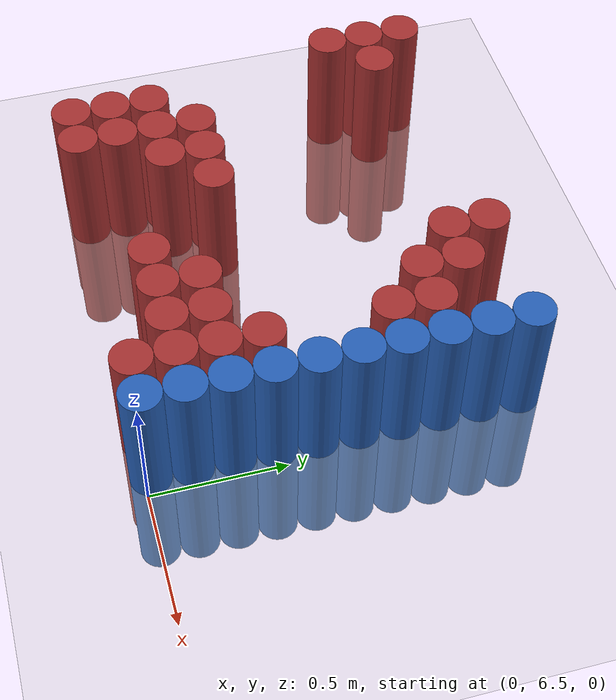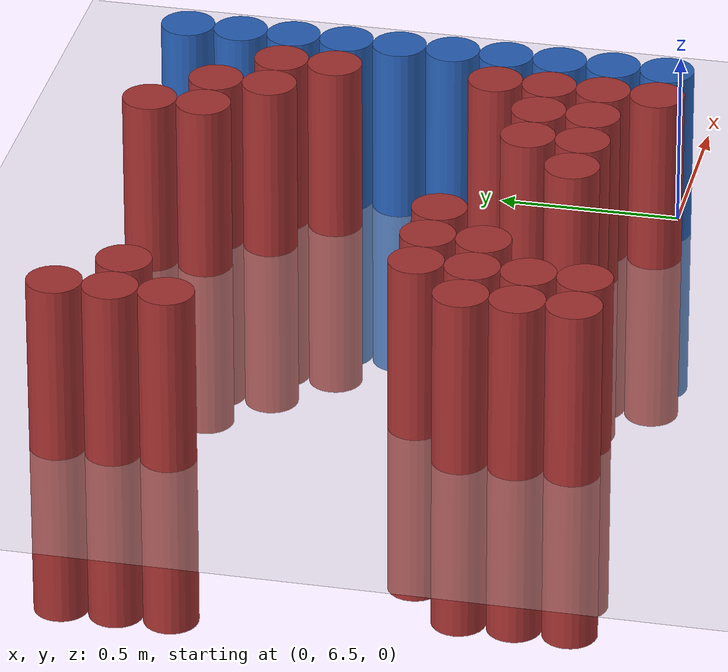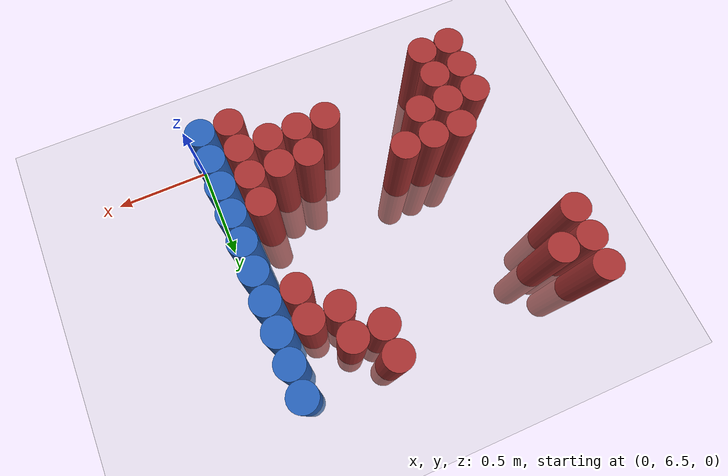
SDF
<sdf version="1.6">
 <world name="default">
  <model name="ground_plane">
   <static>1</static>
   <link name="link">
    <collision name="collision">
     <geometry><plane><normal>0 0 1</normal><size>100 100</size></plane></geometry>
     <surface><friction><ode><mu>100</mu><mu2>50</mu2></ode></friction></surface>
    </collision>
    <visual name="visual">
     <cast_shadows>0</cast_shadows>
     <geometry><plane><normal>0 0 1</normal><size>100 100</size></plane></geometry>
     <material>
      <script><uri>file://media/materials/scripts/gazebo.material</uri><name>Gazebo/Grey</name></script>
     </material>
    </visual>
   </link>
  </model>
  <model name="unit_cylinder_210">
   <static>1</static>
   <pose>-1.575000 7.575000 0.000000 0.000000 0.000000 0.000000</pose>
   <link name="link">
    <inertial>
     <mass>1</mass>
     <inertia><ixx>0.145833</ixx><ixy>0</ixy><ixz>0</ixz><iyy>0.145833</iyy><iyz>0</iyz><izz>0.125</izz></inertia>
    </inertial>
    <collision name="collision">
     <geometry><cylinder><radius>0.075000</radius><length>1</length></cylinder></geometry>
    </collision>
    <visual name="visual">
     <geometry><cylinder><radius>0.075000</radius><length>1</length></cylinder></geometry>
     <material>
      <ambient>0.648000 0.192000 0.192000 1</ambient>
      <diffuse>0.648000 0.192000 0.192000 1</diffuse>
     </material>
     <material>
      <script><name>Gazebo/Grey</name><uri>file://media/materials/scripts/gazebo.material</uri></script>
     </material>
    </visual>
    <sensor name="sensor_contact" type="contact"><contact><collision>collision</collision></contact></sensor>
   </link>
   <plugin filename="gz-sim-touchplugin-system" name="gz::sim::systems::TouchPlugin">
    <target>robot</target>
    <namespace>robot</namespace>
    <time>0.001</time>
    <enabled>true</enabled>
   </plugin>
  </model>
  <model name="unit_cylinder_211">
   <static>1</static>
   <pose>-1.575000 7.725000 0.000000 0.000000 0.000000 0.000000</pose>
   <link name="link">
    <inertial>
     <mass>1</mass>
     <inertia><ixx>0.145833</ixx><ixy>0</ixy><ixz>0</ixz><iyy>0.145833</iyy><iyz>0</iyz><izz>0.125</izz></inertia>
    </inertial>
    <collision name="collision">
     <geometry><cylinder><radius>0.075000</radius><length>1</length></cylinder></geometry>
    </collision>
    <visual name="visual">
     <geometry><cylinder><radius>0.075000</radius><length>1</length></cylinder></geometry>
     <material>
      <ambient>0.648000 0.192000 0.192000 1</ambient>
      <diffuse>0.648000 0.192000 0.192000 1</diffuse>
     </material>
     <material>
      <script><name>Gazebo/Grey</name><uri>file://media/materials/scripts/gazebo.material</uri></script>
     </material>
    </visual>
    <sensor name="sensor_contact" type="contact"><contact><collision>collision</collision></contact></sensor>
   </link>
   <plugin filename="gz-sim-touchplugin-system" name="gz::sim::systems::TouchPlugin">
    <target>robot</target>
    <namespace>robot</namespace>
    <time>0.001</time>
    <enabled>true</enabled>
   </plugin>
  </model>
  <model name="unit_cylinder_212">
   <static>1</static>
   <pose>-1.575000 7.875000 0.000000 0.000000 0.000000 0.000000</pose>
   <link name="link">
    <inertial>
     <mass>1</mass>
     <inertia><ixx>0.145833</ixx><ixy>0</ixy><ixz>0</ixz><iyy>0.145833</iyy><iyz>0</iyz><izz>0.125</izz></inertia>
    </inertial>
    <collision name="collision">
     <geometry><cylinder><radius>0.075000</radius><length>1</length></cylinder></geometry>
    </collision>
    <visual name="visual">
     <geometry><cylinder><radius>0.075000</radius><length>1</length></cylinder></geometry>
     <material>
      <ambient>0.648000 0.192000 0.192000 1</ambient>
      <diffuse>0.648000 0.192000 0.192000 1</diffuse>
     </material>
     <material>
      <script><name>Gazebo/Grey</name><uri>file://media/materials/scripts/gazebo.material</uri></script>
     </material>
    </visual>
    <sensor name="sensor_contact" type="contact"><contact><collision>collision</collision></contact></sensor>
   </link>
   <plugin filename="gz-sim-touchplugin-system" name="gz::sim::systems::TouchPlugin">
    <target>robot</target>
    <namespace>robot</namespace>
    <time>0.001</time>
    <enabled>true</enabled>
   </plugin>
  </model>
  <model name="unit_cylinder_216">
   <static>1</static>
   <pose>-1.425000 6.525000 0.000000 0.000000 0.000000 0.000000</pose>
   <link name="link">
    <inertial>
     <mass>1</mass>
     <inertia><ixx>0.145833</ixx><ixy>0</ixy><ixz>0</ixz><iyy>0.145833</iyy><iyz>0</iyz><izz>0.125</izz></inertia>
    </inertial>
    <collision name="collision">
     <geometry><cylinder><radius>0.075000</radius><length>1</length></cylinder></geometry>
    </collision>
    <visual name="visual">
     <geometry><cylinder><radius>0.075000</radius><length>1</length></cylinder></geometry>
     <material>
      <ambient>0.648000 0.192000 0.192000 1</ambient>
      <diffuse>0.648000 0.192000 0.192000 1</diffuse>
     </material>
     <material>
      <script><name>Gazebo/Grey</name><uri>file://media/materials/scripts/gazebo.material</uri></script>
     </material>
    </visual>
    <sensor name="sensor_contact" type="contact"><contact><collision>collision</collision></contact></sensor>
   </link>
   <plugin filename="gz-sim-touchplugin-system" name="gz::sim::systems::TouchPlugin">
    <target>robot</target>
    <namespace>robot</namespace>
    <time>0.001</time>
    <enabled>true</enabled>
   </plugin>
  </model>
  <model name="unit_cylinder_217">
   <static>1</static>
   <pose>-1.425000 6.675000 0.000000 0.000000 0.000000 0.000000</pose>
   <link name="link">
    <inertial>
     <mass>1</mass>
     <inertia><ixx>0.145833</ixx><ixy>0</ixy><ixz>0</ixz><iyy>0.145833</iyy><iyz>0</iyz><izz>0.125</izz></inertia>
    </inertial>
    <collision name="collision">
     <geometry><cylinder><radius>0.075000</radius><length>1</length></cylinder></geometry>
    </collision>
    <visual name="visual">
     <geometry><cylinder><radius>0.075000</radius><length>1</length></cylinder></geometry>
     <material>
      <ambient>0.648000 0.192000 0.192000 1</ambient>
      <diffuse>0.648000 0.192000 0.192000 1</diffuse>
     </material>
     <material>
      <script><name>Gazebo/Grey</name><uri>file://media/materials/scripts/gazebo.material</uri></script>
     </material>
    </visual>
    <sensor name="sensor_contact" type="contact"><contact><collision>collision</collision></contact></sensor>
   </link>
   <plugin filename="gz-sim-touchplugin-system" name="gz::sim::systems::TouchPlugin">
    <target>robot</target>
    <namespace>robot</namespace>
    <time>0.001</time>
    <enabled>true</enabled>
   </plugin>
  </model>
  <model name="unit_cylinder_218">
   <static>1</static>
   <pose>-1.425000 6.825000 0.000000 0.000000 0.000000 0.000000</pose>
   <link name="link">
    <inertial>
     <mass>1</mass>
     <inertia><ixx>0.145833</ixx><ixy>0</ixy><ixz>0</ixz><iyy>0.145833</iyy><iyz>0</iyz><izz>0.125</izz></inertia>
    </inertial>
    <collision name="collision">
     <geometry><cylinder><radius>0.075000</radius><length>1</length></cylinder></geometry>
    </collision>
    <visual name="visual">
     <geometry><cylinder><radius>0.075000</radius><length>1</length></cylinder></geometry>
     <material>
      <ambient>0.648000 0.192000 0.192000 1</ambient>
      <diffuse>0.648000 0.192000 0.192000 1</diffuse>
     </material>
     <material>
      <script><name>Gazebo/Grey</name><uri>file://media/materials/scripts/gazebo.material</uri></script>
     </material>
    </visual>
    <sensor name="sensor_contact" type="contact"><contact><collision>collision</collision></contact></sensor>
   </link>
   <plugin filename="gz-sim-touchplugin-system" name="gz::sim::systems::TouchPlugin">
    <target>robot</target>
    <namespace>robot</namespace>
    <time>0.001</time>
    <enabled>true</enabled>
   </plugin>
  </model>
  <model name="unit_cylinder_219">
   <static>1</static>
   <pose>-1.425000 7.725000 0.000000 0.000000 0.000000 0.000000</pose>
   <link name="link">
    <inertial>
     <mass>1</mass>
     <inertia><ixx>0.145833</ixx><ixy>0</ixy><ixz>0</ixz><iyy>0.145833</iyy><iyz>0</iyz><izz>0.125</izz></inertia>
    </inertial>
    <collision name="collision">
     <geometry><cylinder><radius>0.075000</radius><length>1</length></cylinder></geometry>
    </collision>
    <visual name="visual">
     <geometry><cylinder><radius>0.075000</radius><length>1</length></cylinder></geometry>
     <material>
      <ambient>0.648000 0.192000 0.192000 1</ambient>
      <diffuse>0.648000 0.192000 0.192000 1</diffuse>
     </material>
     <material>
      <script><name>Gazebo/Grey</name><uri>file://media/materials/scripts/gazebo.material</uri></script>
     </material>
    </visual>
    <sensor name="sensor_contact" type="contact"><contact><collision>collision</collision></contact></sensor>
   </link>
   <plugin filename="gz-sim-touchplugin-system" name="gz::sim::systems::TouchPlugin">
    <target>robot</target>
    <namespace>robot</namespace>
    <time>0.001</time>
    <enabled>true</enabled>
   </plugin>
  </model>
  <model name="unit_cylinder_222">
   <static>1</static>
   <pose>-1.275000 6.525000 0.000000 0.000000 0.000000 0.000000</pose>
   <link name="link">
    <inertial>
     <mass>1</mass>
     <inertia><ixx>0.145833</ixx><ixy>0</ixy><ixz>0</ixz><iyy>0.145833</iyy><iyz>0</iyz><izz>0.125</izz></inertia>
    </inertial>
    <collision name="collision">
     <geometry><cylinder><radius>0.075000</radius><length>1</length></cylinder></geometry>
    </collision>
    <visual name="visual">
     <geometry><cylinder><radius>0.075000</radius><length>1</length></cylinder></geometry>
     <material>
      <ambient>0.648000 0.192000 0.192000 1</ambient>
      <diffuse>0.648000 0.192000 0.192000 1</diffuse>
     </material>
     <material>
      <script><name>Gazebo/Grey</name><uri>file://media/materials/scripts/gazebo.material</uri></script>
     </material>
    </visual>
    <sensor name="sensor_contact" type="contact"><contact><collision>collision</collision></contact></sensor>
   </link>
   <plugin filename="gz-sim-touchplugin-system" name="gz::sim::systems::TouchPlugin">
    <target>robot</target>
    <namespace>robot</namespace>
    <time>0.001</time>
    <enabled>true</enabled>
   </plugin>
  </model>
  <model name="unit_cylinder_223">
   <static>1</static>
   <pose>-1.275000 6.675000 0.000000 0.000000 0.000000 0.000000</pose>
   <link name="link">
    <inertial>
     <mass>1</mass>
     <inertia><ixx>0.145833</ixx><ixy>0</ixy><ixz>0</ixz><iyy>0.145833</iyy><iyz>0</iyz><izz>0.125</izz></inertia>
    </inertial>
    <collision name="collision">
     <geometry><cylinder><radius>0.075000</radius><length>1</length></cylinder></geometry>
    </collision>
    <visual name="visual">
     <geometry><cylinder><radius>0.075000</radius><length>1</length></cylinder></geometry>
     <material>
      <ambient>0.648000 0.192000 0.192000 1</ambient>
      <diffuse>0.648000 0.192000 0.192000 1</diffuse>
     </material>
     <material>
      <script><name>Gazebo/Grey</name><uri>file://media/materials/scripts/gazebo.material</uri></script>
     </material>
    </visual>
    <sensor name="sensor_contact" type="contact"><contact><collision>collision</collision></contact></sensor>
   </link>
   <plugin filename="gz-sim-touchplugin-system" name="gz::sim::systems::TouchPlugin">
    <target>robot</target>
    <namespace>robot</namespace>
    <time>0.001</time>
    <enabled>true</enabled>
   </plugin>
  </model>
  <model name="unit_cylinder_224">
   <static>1</static>
   <pose>-1.275000 6.825000 0.000000 0.000000 0.000000 0.000000</pose>
   <link name="link">
    <inertial>
     <mass>1</mass>
     <inertia><ixx>0.145833</ixx><ixy>0</ixy><ixz>0</ixz><iyy>0.145833</iyy><iyz>0</iyz><izz>0.125</izz></inertia>
    </inertial>
    <collision name="collision">
     <geometry><cylinder><radius>0.075000</radius><length>1</length></cylinder></geometry>
    </collision>
    <visual name="visual">
     <geometry><cylinder><radius>0.075000</radius><length>1</length></cylinder></geometry>
     <material>
      <ambient>0.648000 0.192000 0.192000 1</ambient>
      <diffuse>0.648000 0.192000 0.192000 1</diffuse>
     </material>
     <material>
      <script><name>Gazebo/Grey</name><uri>file://media/materials/scripts/gazebo.material</uri></script>
     </material>
    </visual>
    <sensor name="sensor_contact" type="contact"><contact><collision>collision</collision></contact></sensor>
   </link>
   <plugin filename="gz-sim-touchplugin-system" name="gz::sim::systems::TouchPlugin">
    <target>robot</target>
    <namespace>robot</namespace>
    <time>0.001</time>
    <enabled>true</enabled>
   </plugin>
  </model>
  <model name="unit_cylinder_225">
   <static>1</static>
   <pose>-1.275000 6.975000 0.000000 0.000000 0.000000 0.000000</pose>
   <link name="link">
    <inertial>
     <mass>1</mass>
     <inertia><ixx>0.145833</ixx><ixy>0</ixy><ixz>0</ixz><iyy>0.145833</iyy><iyz>0</iyz><izz>0.125</izz></inertia>
    </inertial>
    <collision name="collision">
     <geometry><cylinder><radius>0.075000</radius><length>1</length></cylinder></geometry>
    </collision>
    <visual name="visual">
     <geometry><cylinder><radius>0.075000</radius><length>1</length></cylinder></geometry>
     <material>
      <ambient>0.648000 0.192000 0.192000 1</ambient>
      <diffuse>0.648000 0.192000 0.192000 1</diffuse>
     </material>
     <material>
      <script><name>Gazebo/Grey</name><uri>file://media/materials/scripts/gazebo.material</uri></script>
     </material>
    </visual>
    <sensor name="sensor_contact" type="contact"><contact><collision>collision</collision></contact></sensor>
   </link>
   <plugin filename="gz-sim-touchplugin-system" name="gz::sim::systems::TouchPlugin">
    <target>robot</target>
    <namespace>robot</namespace>
    <time>0.001</time>
    <enabled>true</enabled>
   </plugin>
  </model>
  <model name="unit_cylinder_230">
   <static>1</static>
   <pose>-1.125000 6.825000 0.000000 0.000000 0.000000 0.000000</pose>
   <link name="link">
    <inertial>
     <mass>1</mass>
     <inertia><ixx>0.145833</ixx><ixy>0</ixy><ixz>0</ixz><iyy>0.145833</iyy><iyz>0</iyz><izz>0.125</izz></inertia>
    </inertial>
    <collision name="collision">
     <geometry><cylinder><radius>0.075000</radius><length>1</length></cylinder></geometry>
    </collision>
    <visual name="visual">
     <geometry><cylinder><radius>0.075000</radius><length>1</length></cylinder></geometry>
     <material>
      <ambient>0.648000 0.192000 0.192000 1</ambient>
      <diffuse>0.648000 0.192000 0.192000 1</diffuse>
     </material>
     <material>
      <script><name>Gazebo/Grey</name><uri>file://media/materials/scripts/gazebo.material</uri></script>
     </material>
    </visual>
    <sensor name="sensor_contact" type="contact"><contact><collision>collision</collision></contact></sensor>
   </link>
   <plugin filename="gz-sim-touchplugin-system" name="gz::sim::systems::TouchPlugin">
    <target>robot</target>
    <namespace>robot</namespace>
    <time>0.001</time>
    <enabled>true</enabled>
   </plugin>
  </model>
  <model name="unit_cylinder_231">
   <static>1</static>
   <pose>-1.125000 6.975000 0.000000 0.000000 0.000000 0.000000</pose>
   <link name="link">
    <inertial>
     <mass>1</mass>
     <inertia><ixx>0.145833</ixx><ixy>0</ixy><ixz>0</ixz><iyy>0.145833</iyy><iyz>0</iyz><izz>0.125</izz></inertia>
    </inertial>
    <collision name="collision">
     <geometry><cylinder><radius>0.075000</radius><length>1</length></cylinder></geometry>
    </collision>
    <visual name="visual">
     <geometry><cylinder><radius>0.075000</radius><length>1</length></cylinder></geometry>
     <material>
      <ambient>0.648000 0.192000 0.192000 1</ambient>
      <diffuse>0.648000 0.192000 0.192000 1</diffuse>
     </material>
     <material>
      <script><name>Gazebo/Grey</name><uri>file://media/materials/scripts/gazebo.material</uri></script>
     </material>
    </visual>
    <sensor name="sensor_contact" type="contact"><contact><collision>collision</collision></contact></sensor>
   </link>
   <plugin filename="gz-sim-touchplugin-system" name="gz::sim::systems::TouchPlugin">
    <target>robot</target>
    <namespace>robot</namespace>
    <time>0.001</time>
    <enabled>true</enabled>
   </plugin>
  </model>
  <model name="unit_cylinder_236">
   <static>1</static>
   <pose>-0.975000 6.975000 0.000000 0.000000 0.000000 0.000000</pose>
   <link name="link">
    <inertial>
     <mass>1</mass>
     <inertia><ixx>0.145833</ixx><ixy>0</ixy><ixz>0</ixz><iyy>0.145833</iyy><iyz>0</iyz><izz>0.125</izz></inertia>
    </inertial>
    <collision name="collision">
     <geometry><cylinder><radius>0.075000</radius><length>1</length></cylinder></geometry>
    </collision>
    <visual name="visual">
     <geometry><cylinder><radius>0.075000</radius><length>1</length></cylinder></geometry>
     <material>
      <ambient>0.648000 0.192000 0.192000 1</ambient>
      <diffuse>0.648000 0.192000 0.192000 1</diffuse>
     </material>
     <material>
      <script><name>Gazebo/Grey</name><uri>file://media/materials/scripts/gazebo.material</uri></script>
     </material>
    </visual>
    <sensor name="sensor_contact" type="contact"><contact><collision>collision</collision></contact></sensor>
   </link>
   <plugin filename="gz-sim-touchplugin-system" name="gz::sim::systems::TouchPlugin">
    <target>robot</target>
    <namespace>robot</namespace>
    <time>0.001</time>
    <enabled>true</enabled>
   </plugin>
  </model>
  <model name="unit_cylinder_246">
   <static>1</static>
   <pose>-0.675000 6.675000 0.000000 0.000000 0.000000 0.000000</pose>
   <link name="link">
    <inertial>
     <mass>1</mass>
     <inertia><ixx>0.145833</ixx><ixy>0</ixy><ixz>0</ixz><iyy>0.145833</iyy><iyz>0</iyz><izz>0.125</izz></inertia>
    </inertial>
    <collision name="collision">
     <geometry><cylinder><radius>0.075000</radius><length>1</length></cylinder></geometry>
    </collision>
    <visual name="visual">
     <geometry><cylinder><radius>0.075000</radius><length>1</length></cylinder></geometry>
     <material>
      <ambient>0.648000 0.192000 0.192000 1</ambient>
      <diffuse>0.648000 0.192000 0.192000 1</diffuse>
     </material>
     <material>
      <script><name>Gazebo/Grey</name><uri>file://media/materials/scripts/gazebo.material</uri></script>
     </material>
    </visual>
    <sensor name="sensor_contact" type="contact"><contact><collision>collision</collision></contact></sensor>
   </link>
   <plugin filename="gz-sim-touchplugin-system" name="gz::sim::systems::TouchPlugin">
    <target>robot</target>
    <namespace>robot</namespace>
    <time>0.001</time>
    <enabled>true</enabled>
   </plugin>
  </model>
  <model name="unit_cylinder_252">
   <static>1</static>
   <pose>-0.525000 6.675000 0.000000 0.000000 0.000000 0.000000</pose>
   <link name="link">
    <inertial>
     <mass>1</mass>
     <inertia><ixx>0.145833</ixx><ixy>0</ixy><ixz>0</ixz><iyy>0.145833</iyy><iyz>0</iyz><izz>0.125</izz></inertia>
    </inertial>
    <collision name="collision">
     <geometry><cylinder><radius>0.075000</radius><length>1</length></cylinder></geometry>
    </collision>
    <visual name="visual">
     <geometry><cylinder><radius>0.075000</radius><length>1</length></cylinder></geometry>
     <material>
      <ambient>0.648000 0.192000 0.192000 1</ambient>
      <diffuse>0.648000 0.192000 0.192000 1</diffuse>
     </material>
     <material>
      <script><name>Gazebo/Grey</name><uri>file://media/materials/scripts/gazebo.material</uri></script>
     </material>
    </visual>
    <sensor name="sensor_contact" type="contact"><contact><collision>collision</collision></contact></sensor>
   </link>
   <plugin filename="gz-sim-touchplugin-system" name="gz::sim::systems::TouchPlugin">
    <target>robot</target>
    <namespace>robot</namespace>
    <time>0.001</time>
    <enabled>true</enabled>
   </plugin>
  </model>
  <model name="unit_cylinder_253">
   <static>1</static>
   <pose>-0.525000 6.825000 0.000000 0.000000 0.000000 0.000000</pose>
   <link name="link">
    <inertial>
     <mass>1</mass>
     <inertia><ixx>0.145833</ixx><ixy>0</ixy><ixz>0</ixz><iyy>0.145833</iyy><iyz>0</iyz><izz>0.125</izz></inertia>
    </inertial>
    <collision name="collision">
     <geometry><cylinder><radius>0.075000</radius><length>1</length></cylinder></geometry>
    </collision>
    <visual name="visual">
     <geometry><cylinder><radius>0.075000</radius><length>1</length></cylinder></geometry>
     <material>
      <ambient>0.648000 0.192000 0.192000 1</ambient>
      <diffuse>0.648000 0.192000 0.192000 1</diffuse>
     </material>
     <material>
      <script><name>Gazebo/Grey</name><uri>file://media/materials/scripts/gazebo.material</uri></script>
     </material>
    </visual>
    <sensor name="sensor_contact" type="contact"><contact><collision>collision</collision></contact></sensor>
   </link>
   <plugin filename="gz-sim-touchplugin-system" name="gz::sim::systems::TouchPlugin">
    <target>robot</target>
    <namespace>robot</namespace>
    <time>0.001</time>
    <enabled>true</enabled>
   </plugin>
  </model>
  <model name="unit_cylinder_254">
   <static>1</static>
   <pose>-0.525000 7.725000 0.000000 0.000000 0.000000 0.000000</pose>
   <link name="link">
    <inertial>
     <mass>1</mass>
     <inertia><ixx>0.145833</ixx><ixy>0</ixy><ixz>0</ixz><iyy>0.145833</iyy><iyz>0</iyz><izz>0.125</izz></inertia>
    </inertial>
    <collision name="collision">
     <geometry><cylinder><radius>0.075000</radius><length>1</length></cylinder></geometry>
    </collision>
    <visual name="visual">
     <geometry><cylinder><radius>0.075000</radius><length>1</length></cylinder></geometry>
     <material>
      <ambient>0.648000 0.192000 0.192000 1</ambient>
      <diffuse>0.648000 0.192000 0.192000 1</diffuse>
     </material>
     <material>
      <script><name>Gazebo/Grey</name><uri>file://media/materials/scripts/gazebo.material</uri></script>
     </material>
    </visual>
    <sensor name="sensor_contact" type="contact"><contact><collision>collision</collision></contact></sensor>
   </link>
   <plugin filename="gz-sim-touchplugin-system" name="gz::sim::systems::TouchPlugin">
    <target>robot</target>
    <namespace>robot</namespace>
    <time>0.001</time>
    <enabled>true</enabled>
   </plugin>
  </model>
  <model name="unit_cylinder_255">
   <static>1</static>
   <pose>-0.525000 7.875000 0.000000 0.000000 0.000000 0.000000</pose>
   <link name="link">
    <inertial>
     <mass>1</mass>
     <inertia><ixx>0.145833</ixx><ixy>0</ixy><ixz>0</ixz><iyy>0.145833</iyy><iyz>0</iyz><izz>0.125</izz></inertia>
    </inertial>
    <collision name="collision">
     <geometry><cylinder><radius>0.075000</radius><length>1</length></cylinder></geometry>
    </collision>
    <visual name="visual">
     <geometry><cylinder><radius>0.075000</radius><length>1</length></cylinder></geometry>
     <material>
      <ambient>0.648000 0.192000 0.192000 1</ambient>
      <diffuse>0.648000 0.192000 0.192000 1</diffuse>
     </material>
     <material>
      <script><name>Gazebo/Grey</name><uri>file://media/materials/scripts/gazebo.material</uri></script>
     </material>
    </visual>
    <sensor name="sensor_contact" type="contact"><contact><collision>collision</collision></contact></sensor>
   </link>
   <plugin filename="gz-sim-touchplugin-system" name="gz::sim::systems::TouchPlugin">
    <target>robot</target>
    <namespace>robot</namespace>
    <time>0.001</time>
    <enabled>true</enabled>
   </plugin>
  </model>
  <model name="unit_cylinder_262">
   <static>1</static>
   <pose>-0.375000 6.675000 0.000000 0.000000 0.000000 0.000000</pose>
   <link name="link">
    <inertial>
     <mass>1</mass>
     <inertia><ixx>0.145833</ixx><ixy>0</ixy><ixz>0</ixz><iyy>0.145833</iyy><iyz>0</iyz><izz>0.125</izz></inertia>
    </inertial>
    <collision name="collision">
     <geometry><cylinder><radius>0.075000</radius><length>1</length></cylinder></geometry>
    </collision>
    <visual name="visual">
     <geometry><cylinder><radius>0.075000</radius><length>1</length></cylinder></geometry>
     <material>
      <ambient>0.648000 0.192000 0.192000 1</ambient>
      <diffuse>0.648000 0.192000 0.192000 1</diffuse>
     </material>
     <material>
      <script><name>Gazebo/Grey</name><uri>file://media/materials/scripts/gazebo.material</uri></script>
     </material>
    </visual>
    <sensor name="sensor_contact" type="contact"><contact><collision>collision</collision></contact></sensor>
   </link>
   <plugin filename="gz-sim-touchplugin-system" name="gz::sim::systems::TouchPlugin">
    <target>robot</target>
    <namespace>robot</namespace>
    <time>0.001</time>
    <enabled>true</enabled>
   </plugin>
  </model>
  <model name="unit_cylinder_263">
   <static>1</static>
   <pose>-0.375000 6.825000 0.000000 0.000000 0.000000 0.000000</pose>
   <link name="link">
    <inertial>
     <mass>1</mass>
     <inertia><ixx>0.145833</ixx><ixy>0</ixy><ixz>0</ixz><iyy>0.145833</iyy><iyz>0</iyz><izz>0.125</izz></inertia>
    </inertial>
    <collision name="collision">
     <geometry><cylinder><radius>0.075000</radius><length>1</length></cylinder></geometry>
    </collision>
    <visual name="visual">
     <geometry><cylinder><radius>0.075000</radius><length>1</length></cylinder></geometry>
     <material>
      <ambient>0.648000 0.192000 0.192000 1</ambient>
      <diffuse>0.648000 0.192000 0.192000 1</diffuse>
     </material>
     <material>
      <script><name>Gazebo/Grey</name><uri>file://media/materials/scripts/gazebo.material</uri></script>
     </material>
    </visual>
    <sensor name="sensor_contact" type="contact"><contact><collision>collision</collision></contact></sensor>
   </link>
   <plugin filename="gz-sim-touchplugin-system" name="gz::sim::systems::TouchPlugin">
    <target>robot</target>
    <namespace>robot</namespace>
    <time>0.001</time>
    <enabled>true</enabled>
   </plugin>
  </model>
  <model name="unit_cylinder_264">
   <static>1</static>
   <pose>-0.375000 7.575000 0.000000 0.000000 0.000000 0.000000</pose>
   <link name="link">
    <inertial>
     <mass>1</mass>
     <inertia><ixx>0.145833</ixx><ixy>0</ixy><ixz>0</ixz><iyy>0.145833</iyy><iyz>0</iyz><izz>0.125</izz></inertia>
    </inertial>
    <collision name="collision">
     <geometry><cylinder><radius>0.075000</radius><length>1</length></cylinder></geometry>
    </collision>
    <visual name="visual">
     <geometry><cylinder><radius>0.075000</radius><length>1</length></cylinder></geometry>
     <material>
      <ambient>0.648000 0.192000 0.192000 1</ambient>
      <diffuse>0.648000 0.192000 0.192000 1</diffuse>
     </material>
     <material>
      <script><name>Gazebo/Grey</name><uri>file://media/materials/scripts/gazebo.material</uri></script>
     </material>
    </visual>
    <sensor name="sensor_contact" type="contact"><contact><collision>collision</collision></contact></sensor>
   </link>
   <plugin filename="gz-sim-touchplugin-system" name="gz::sim::systems::TouchPlugin">
    <target>robot</target>
    <namespace>robot</namespace>
    <time>0.001</time>
    <enabled>true</enabled>
   </plugin>
  </model>
  <model name="unit_cylinder_265">
   <static>1</static>
   <pose>-0.375000 7.725000 0.000000 0.000000 0.000000 0.000000</pose>
   <link name="link">
    <inertial>
     <mass>1</mass>
     <inertia><ixx>0.145833</ixx><ixy>0</ixy><ixz>0</ixz><iyy>0.145833</iyy><iyz>0</iyz><izz>0.125</izz></inertia>
    </inertial>
    <collision name="collision">
     <geometry><cylinder><radius>0.075000</radius><length>1</length></cylinder></geometry>
    </collision>
    <visual name="visual">
     <geometry><cylinder><radius>0.075000</radius><length>1</length></cylinder></geometry>
     <material>
      <ambient>0.648000 0.192000 0.192000 1</ambient>
      <diffuse>0.648000 0.192000 0.192000 1</diffuse>
     </material>
     <material>
      <script><name>Gazebo/Grey</name><uri>file://media/materials/scripts/gazebo.material</uri></script>
     </material>
    </visual>
    <sensor name="sensor_contact" type="contact"><contact><collision>collision</collision></contact></sensor>
   </link>
   <plugin filename="gz-sim-touchplugin-system" name="gz::sim::systems::TouchPlugin">
    <target>robot</target>
    <namespace>robot</namespace>
    <time>0.001</time>
    <enabled>true</enabled>
   </plugin>
  </model>
  <model name="unit_cylinder_272">
   <static>1</static>
   <pose>-0.225000 6.525000 0.000000 0.000000 0.000000 0.000000</pose>
   <link name="link">
    <inertial>
     <mass>1</mass>
     <inertia><ixx>0.145833</ixx><ixy>0</ixy><ixz>0</ixz><iyy>0.145833</iyy><iyz>0</iyz><izz>0.125</izz></inertia>
    </inertial>
    <collision name="collision">
     <geometry><cylinder><radius>0.075000</radius><length>1</length></cylinder></geometry>
    </collision>
    <visual name="visual">
     <geometry><cylinder><radius>0.075000</radius><length>1</length></cylinder></geometry>
     <material>
      <ambient>0.648000 0.192000 0.192000 1</ambient>
      <diffuse>0.648000 0.192000 0.192000 1</diffuse>
     </material>
     <material>
      <script><name>Gazebo/Grey</name><uri>file://media/materials/scripts/gazebo.material</uri></script>
     </material>
    </visual>
    <sensor name="sensor_contact" type="contact"><contact><collision>collision</collision></contact></sensor>
   </link>
   <plugin filename="gz-sim-touchplugin-system" name="gz::sim::systems::TouchPlugin">
    <target>robot</target>
    <namespace>robot</namespace>
    <time>0.001</time>
    <enabled>true</enabled>
   </plugin>
  </model>
  <model name="unit_cylinder_273">
   <static>1</static>
   <pose>-0.225000 6.675000 0.000000 0.000000 0.000000 0.000000</pose>
   <link name="link">
    <inertial>
     <mass>1</mass>
     <inertia><ixx>0.145833</ixx><ixy>0</ixy><ixz>0</ixz><iyy>0.145833</iyy><iyz>0</iyz><izz>0.125</izz></inertia>
    </inertial>
    <collision name="collision">
     <geometry><cylinder><radius>0.075000</radius><length>1</length></cylinder></geometry>
    </collision>
    <visual name="visual">
     <geometry><cylinder><radius>0.075000</radius><length>1</length></cylinder></geometry>
     <material>
      <ambient>0.648000 0.192000 0.192000 1</ambient>
      <diffuse>0.648000 0.192000 0.192000 1</diffuse>
     </material>
     <material>
      <script><name>Gazebo/Grey</name><uri>file://media/materials/scripts/gazebo.material</uri></script>
     </material>
    </visual>
    <sensor name="sensor_contact" type="contact"><contact><collision>collision</collision></contact></sensor>
   </link>
   <plugin filename="gz-sim-touchplugin-system" name="gz::sim::systems::TouchPlugin">
    <target>robot</target>
    <namespace>robot</namespace>
    <time>0.001</time>
    <enabled>true</enabled>
   </plugin>
  </model>
  <model name="unit_cylinder_274">
   <static>1</static>
   <pose>-0.225000 6.825000 0.000000 0.000000 0.000000 0.000000</pose>
   <link name="link">
    <inertial>
     <mass>1</mass>
     <inertia><ixx>0.145833</ixx><ixy>0</ixy><ixz>0</ixz><iyy>0.145833</iyy><iyz>0</iyz><izz>0.125</izz></inertia>
    </inertial>
    <collision name="collision">
     <geometry><cylinder><radius>0.075000</radius><length>1</length></cylinder></geometry>
    </collision>
    <visual name="visual">
     <geometry><cylinder><radius>0.075000</radius><length>1</length></cylinder></geometry>
     <material>
      <ambient>0.648000 0.192000 0.192000 1</ambient>
      <diffuse>0.648000 0.192000 0.192000 1</diffuse>
     </material>
     <material>
      <script><name>Gazebo/Grey</name><uri>file://media/materials/scripts/gazebo.material</uri></script>
     </material>
    </visual>
    <sensor name="sensor_contact" type="contact"><contact><collision>collision</collision></contact></sensor>
   </link>
   <plugin filename="gz-sim-touchplugin-system" name="gz::sim::systems::TouchPlugin">
    <target>robot</target>
    <namespace>robot</namespace>
    <time>0.001</time>
    <enabled>true</enabled>
   </plugin>
  </model>
  <model name="unit_cylinder_275">
   <static>1</static>
   <pose>-0.225000 6.975000 0.000000 0.000000 0.000000 0.000000</pose>
   <link name="link">
    <inertial>
     <mass>1</mass>
     <inertia><ixx>0.145833</ixx><ixy>0</ixy><ixz>0</ixz><iyy>0.145833</iyy><iyz>0</iyz><izz>0.125</izz></inertia>
    </inertial>
    <collision name="collision">
     <geometry><cylinder><radius>0.075000</radius><length>1</length></cylinder></geometry>
    </collision>
    <visual name="visual">
     <geometry><cylinder><radius>0.075000</radius><length>1</length></cylinder></geometry>
     <material>
      <ambient>0.648000 0.192000 0.192000 1</ambient>
      <diffuse>0.648000 0.192000 0.192000 1</diffuse>
     </material>
     <material>
      <script><name>Gazebo/Grey</name><uri>file://media/materials/scripts/gazebo.material</uri></script>
     </material>
    </visual>
    <sensor name="sensor_contact" type="contact"><contact><collision>collision</collision></contact></sensor>
   </link>
   <plugin filename="gz-sim-touchplugin-system" name="gz::sim::systems::TouchPlugin">
    <target>robot</target>
    <namespace>robot</namespace>
    <time>0.001</time>
    <enabled>true</enabled>
   </plugin>
  </model>
  <model name="unit_cylinder_276">
   <static>1</static>
   <pose>-0.225000 7.425000 0.000000 0.000000 0.000000 0.000000</pose>
   <link name="link">
    <inertial>
     <mass>1</mass>
     <inertia><ixx>0.145833</ixx><ixy>0</ixy><ixz>0</ixz><iyy>0.145833</iyy><iyz>0</iyz><izz>0.125</izz></inertia>
    </inertial>
    <collision name="collision">
     <geometry><cylinder><radius>0.075000</radius><length>1</length></cylinder></geometry>
    </collision>
    <visual name="visual">
     <geometry><cylinder><radius>0.075000</radius><length>1</length></cylinder></geometry>
     <material>
      <ambient>0.648000 0.192000 0.192000 1</ambient>
      <diffuse>0.648000 0.192000 0.192000 1</diffuse>
     </material>
     <material>
      <script><name>Gazebo/Grey</name><uri>file://media/materials/scripts/gazebo.material</uri></script>
     </material>
    </visual>
    <sensor name="sensor_contact" type="contact"><contact><collision>collision</collision></contact></sensor>
   </link>
   <plugin filename="gz-sim-touchplugin-system" name="gz::sim::systems::TouchPlugin">
    <target>robot</target>
    <namespace>robot</namespace>
    <time>0.001</time>
    <enabled>true</enabled>
   </plugin>
  </model>
  <model name="unit_cylinder_277">
   <static>1</static>
   <pose>-0.225000 7.575000 0.000000 0.000000 0.000000 0.000000</pose>
   <link name="link">
    <inertial>
     <mass>1</mass>
     <inertia><ixx>0.145833</ixx><ixy>0</ixy><ixz>0</ixz><iyy>0.145833</iyy><iyz>0</iyz><izz>0.125</izz></inertia>
    </inertial>
    <collision name="collision">
     <geometry><cylinder><radius>0.075000</radius><length>1</length></cylinder></geometry>
    </collision>
    <visual name="visual">
     <geometry><cylinder><radius>0.075000</radius><length>1</length></cylinder></geometry>
     <material>
      <ambient>0.648000 0.192000 0.192000 1</ambient>
      <diffuse>0.648000 0.192000 0.192000 1</diffuse>
     </material>
     <material>
      <script><name>Gazebo/Grey</name><uri>file://media/materials/scripts/gazebo.material</uri></script>
     </material>
    </visual>
    <sensor name="sensor_contact" type="contact"><contact><collision>collision</collision></contact></sensor>
   </link>
   <plugin filename="gz-sim-touchplugin-system" name="gz::sim::systems::TouchPlugin">
    <target>robot</target>
    <namespace>robot</namespace>
    <time>0.001</time>
    <enabled>true</enabled>
   </plugin>
  </model>
  <model name="unit_cylinder_293">
   <static>1</static>
   <pose>-0.075000 6.525000 0.000000 0.000000 0.000000 0.000000</pose>
   <link name="link">
    <inertial>
     <mass>1</mass>
     <inertia><ixx>0.145833</ixx><ixy>0</ixy><ixz>0</ixz><iyy>0.145833</iyy><iyz>0</iyz><izz>0.125</izz></inertia>
    </inertial>
    <collision name="collision">
     <geometry><cylinder><radius>0.075000</radius><length>1</length></cylinder></geometry>
    </collision>
    <visual name="visual">
     <geometry><cylinder><radius>0.075000</radius><length>1</length></cylinder></geometry>
     <material>
      <ambient>0.152000 0.379000 0.720000 1</ambient>
      <diffuse>0.152000 0.379000 0.720000 1</diffuse>
     </material>
     <material>
      <script><name>Gazebo/Grey</name><uri>file://media/materials/scripts/gazebo.material</uri></script>
     </material>
    </visual>
    <sensor name="sensor_contact" type="contact"><contact><collision>collision</collision></contact></sensor>
   </link>
   <plugin filename="gz-sim-touchplugin-system" name="gz::sim::systems::TouchPlugin">
    <target>robot</target>
    <namespace>robot</namespace>
    <time>0.001</time>
    <enabled>true</enabled>
   </plugin>
  </model>
  <model name="unit_cylinder_294">
   <static>1</static>
   <pose>-0.075000 6.675000 0.000000 0.000000 0.000000 0.000000</pose>
   <link name="link">
    <inertial>
     <mass>1</mass>
     <inertia><ixx>0.145833</ixx><ixy>0</ixy><ixz>0</ixz><iyy>0.145833</iyy><iyz>0</iyz><izz>0.125</izz></inertia>
    </inertial>
    <collision name="collision">
     <geometry><cylinder><radius>0.075000</radius><length>1</length></cylinder></geometry>
    </collision>
    <visual name="visual">
     <geometry><cylinder><radius>0.075000</radius><length>1</length></cylinder></geometry>
     <material>
      <ambient>0.152000 0.379000 0.720000 1</ambient>
      <diffuse>0.152000 0.379000 0.720000 1</diffuse>
     </material>
     <material>
      <script><name>Gazebo/Grey</name><uri>file://media/materials/scripts/gazebo.material</uri></script>
     </material>
    </visual>
    <sensor name="sensor_contact" type="contact"><contact><collision>collision</collision></contact></sensor>
   </link>
   <plugin filename="gz-sim-touchplugin-system" name="gz::sim::systems::TouchPlugin">
    <target>robot</target>
    <namespace>robot</namespace>
    <time>0.001</time>
    <enabled>true</enabled>
   </plugin>
  </model>
  <model name="unit_cylinder_295">
   <static>1</static>
   <pose>-0.075000 6.825000 0.000000 0.000000 0.000000 0.000000</pose>
   <link name="link">
    <inertial>
     <mass>1</mass>
     <inertia><ixx>0.145833</ixx><ixy>0</ixy><ixz>0</ixz><iyy>0.145833</iyy><iyz>0</iyz><izz>0.125</izz></inertia>
    </inertial>
    <collision name="collision">
     <geometry><cylinder><radius>0.075000</radius><length>1</length></cylinder></geometry>
    </collision>
    <visual name="visual">
     <geometry><cylinder><radius>0.075000</radius><length>1</length></cylinder></geometry>
     <material>
      <ambient>0.152000 0.379000 0.720000 1</ambient>
      <diffuse>0.152000 0.379000 0.720000 1</diffuse>
     </material>
     <material>
      <script><name>Gazebo/Grey</name><uri>file://media/materials/scripts/gazebo.material</uri></script>
     </material>
    </visual>
    <sensor name="sensor_contact" type="contact"><contact><collision>collision</collision></contact></sensor>
   </link>
   <plugin filename="gz-sim-touchplugin-system" name="gz::sim::systems::TouchPlugin">
    <target>robot</target>
    <namespace>robot</namespace>
    <time>0.001</time>
    <enabled>true</enabled>
   </plugin>
  </model>
  <model name="unit_cylinder_296">
   <static>1</static>
   <pose>-0.075000 6.975000 0.000000 0.000000 0.000000 0.000000</pose>
   <link name="link">
    <inertial>
     <mass>1</mass>
     <inertia><ixx>0.145833</ixx><ixy>0</ixy><ixz>0</ixz><iyy>0.145833</iyy><iyz>0</iyz><izz>0.125</izz></inertia>
    </inertial>
    <collision name="collision">
     <geometry><cylinder><radius>0.075000</radius><length>1</length></cylinder></geometry>
    </collision>
    <visual name="visual">
     <geometry><cylinder><radius>0.075000</radius><length>1</length></cylinder></geometry>
     <material>
      <ambient>0.152000 0.379000 0.720000 1</ambient>
      <diffuse>0.152000 0.379000 0.720000 1</diffuse>
     </material>
     <material>
      <script><name>Gazebo/Grey</name><uri>file://media/materials/scripts/gazebo.material</uri></script>
     </material>
    </visual>
    <sensor name="sensor_contact" type="contact"><contact><collision>collision</collision></contact></sensor>
   </link>
   <plugin filename="gz-sim-touchplugin-system" name="gz::sim::systems::TouchPlugin">
    <target>robot</target>
    <namespace>robot</namespace>
    <time>0.001</time>
    <enabled>true</enabled>
   </plugin>
  </model>
  <model name="unit_cylinder_297">
   <static>1</static>
   <pose>-0.075000 7.125000 0.000000 0.000000 0.000000 0.000000</pose>
   <link name="link">
    <inertial>
     <mass>1</mass>
     <inertia><ixx>0.145833</ixx><ixy>0</ixy><ixz>0</ixz><iyy>0.145833</iyy><iyz>0</iyz><izz>0.125</izz></inertia>
    </inertial>
    <collision name="collision">
     <geometry><cylinder><radius>0.075000</radius><length>1</length></cylinder></geometry>
    </collision>
    <visual name="visual">
     <geometry><cylinder><radius>0.075000</radius><length>1</length></cylinder></geometry>
     <material>
      <ambient>0.152000 0.379000 0.720000 1</ambient>
      <diffuse>0.152000 0.379000 0.720000 1</diffuse>
     </material>
     <material>
      <script><name>Gazebo/Grey</name><uri>file://media/materials/scripts/gazebo.material</uri></script>
     </material>
    </visual>
    <sensor name="sensor_contact" type="contact"><contact><collision>collision</collision></contact></sensor>
   </link>
   <plugin filename="gz-sim-touchplugin-system" name="gz::sim::systems::TouchPlugin">
    <target>robot</target>
    <namespace>robot</namespace>
    <time>0.001</time>
    <enabled>true</enabled>
   </plugin>
  </model>
  <model name="unit_cylinder_298">
   <static>1</static>
   <pose>-0.075000 7.275000 0.000000 0.000000 0.000000 0.000000</pose>
   <link name="link">
    <inertial>
     <mass>1</mass>
     <inertia><ixx>0.145833</ixx><ixy>0</ixy><ixz>0</ixz><iyy>0.145833</iyy><iyz>0</iyz><izz>0.125</izz></inertia>
    </inertial>
    <collision name="collision">
     <geometry><cylinder><radius>0.075000</radius><length>1</length></cylinder></geometry>
    </collision>
    <visual name="visual">
     <geometry><cylinder><radius>0.075000</radius><length>1</length></cylinder></geometry>
     <material>
      <ambient>0.152000 0.379000 0.720000 1</ambient>
      <diffuse>0.152000 0.379000 0.720000 1</diffuse>
     </material>
     <material>
      <script><name>Gazebo/Grey</name><uri>file://media/materials/scripts/gazebo.material</uri></script>
     </material>
    </visual>
    <sensor name="sensor_contact" type="contact"><contact><collision>collision</collision></contact></sensor>
   </link>
   <plugin filename="gz-sim-touchplugin-system" name="gz::sim::systems::TouchPlugin">
    <target>robot</target>
    <namespace>robot</namespace>
    <time>0.001</time>
    <enabled>true</enabled>
   </plugin>
  </model>
  <model name="unit_cylinder_299">
   <static>1</static>
   <pose>-0.075000 7.425000 0.000000 0.000000 0.000000 0.000000</pose>
   <link name="link">
    <inertial>
     <mass>1</mass>
     <inertia><ixx>0.145833</ixx><ixy>0</ixy><ixz>0</ixz><iyy>0.145833</iyy><iyz>0</iyz><izz>0.125</izz></inertia>
    </inertial>
    <collision name="collision">
     <geometry><cylinder><radius>0.075000</radius><length>1</length></cylinder></geometry>
    </collision>
    <visual name="visual">
     <geometry><cylinder><radius>0.075000</radius><length>1</length></cylinder></geometry>
     <material>
      <ambient>0.152000 0.379000 0.720000 1</ambient>
      <diffuse>0.152000 0.379000 0.720000 1</diffuse>
     </material>
     <material>
      <script><name>Gazebo/Grey</name><uri>file://media/materials/scripts/gazebo.material</uri></script>
     </material>
    </visual>
    <sensor name="sensor_contact" type="contact"><contact><collision>collision</collision></contact></sensor>
   </link>
   <plugin filename="gz-sim-touchplugin-system" name="gz::sim::systems::TouchPlugin">
    <target>robot</target>
    <namespace>robot</namespace>
    <time>0.001</time>
    <enabled>true</enabled>
   </plugin>
  </model>
  <model name="unit_cylinder_300">
   <static>1</static>
   <pose>-0.075000 7.575000 0.000000 0.000000 0.000000 0.000000</pose>
   <link name="link">
    <inertial>
     <mass>1</mass>
     <inertia><ixx>0.145833</ixx><ixy>0</ixy><ixz>0</ixz><iyy>0.145833</iyy><iyz>0</iyz><izz>0.125</izz></inertia>
    </inertial>
    <collision name="collision">
     <geometry><cylinder><radius>0.075000</radius><length>1</length></cylinder></geometry>
    </collision>
    <visual name="visual">
     <geometry><cylinder><radius>0.075000</radius><length>1</length></cylinder></geometry>
     <material>
      <ambient>0.152000 0.379000 0.720000 1</ambient>
      <diffuse>0.152000 0.379000 0.720000 1</diffuse>
     </material>
     <material>
      <script><name>Gazebo/Grey</name><uri>file://media/materials/scripts/gazebo.material</uri></script>
     </material>
    </visual>
    <sensor name="sensor_contact" type="contact"><contact><collision>collision</collision></contact></sensor>
   </link>
   <plugin filename="gz-sim-touchplugin-system" name="gz::sim::systems::TouchPlugin">
    <target>robot</target>
    <namespace>robot</namespace>
    <time>0.001</time>
    <enabled>true</enabled>
   </plugin>
  </model>
  <model name="unit_cylinder_301">
   <static>1</static>
   <pose>-0.075000 7.725000 0.000000 0.000000 0.000000 0.000000</pose>
   <link name="link">
    <inertial>
     <mass>1</mass>
     <inertia><ixx>0.145833</ixx><ixy>0</ixy><ixz>0</ixz><iyy>0.145833</iyy><iyz>0</iyz><izz>0.125</izz></inertia>
    </inertial>
    <collision name="collision">
     <geometry><cylinder><radius>0.075000</radius><length>1</length></cylinder></geometry>
    </collision>
    <visual name="visual">
     <geometry><cylinder><radius>0.075000</radius><length>1</length></cylinder></geometry>
     <material>
      <ambient>0.152000 0.379000 0.720000 1</ambient>
      <diffuse>0.152000 0.379000 0.720000 1</diffuse>
     </material>
     <material>
      <script><name>Gazebo/Grey</name><uri>file://media/materials/scripts/gazebo.material</uri></script>
     </material>
    </visual>
    <sensor name="sensor_contact" type="contact"><contact><collision>collision</collision></contact></sensor>
   </link>
   <plugin filename="gz-sim-touchplugin-system" name="gz::sim::systems::TouchPlugin">
    <target>robot</target>
    <namespace>robot</namespace>
    <time>0.001</time>
    <enabled>true</enabled>
   </plugin>
  </model>
  <model name="unit_cylinder_302">
   <static>1</static>
   <pose>-0.075000 7.875000 0.000000 0.000000 0.000000 0.000000</pose>
   <link name="link">
    <inertial>
     <mass>1</mass>
     <inertia><ixx>0.145833</ixx><ixy>0</ixy><ixz>0</ixz><iyy>0.145833</iyy><iyz>0</iyz><izz>0.125</izz></inertia>
    </inertial>
    <collision name="collision">
     <geometry><cylinder><radius>0.075000</radius><length>1</length></cylinder></geometry>
    </collision>
    <visual name="visual">
     <geometry><cylinder><radius>0.075000</radius><length>1</length></cylinder></geometry>
     <material>
      <ambient>0.152000 0.379000 0.720000 1</ambient>
      <diffuse>0.152000 0.379000 0.720000 1</diffuse>
     </material>
     <material>
      <script><name>Gazebo/Grey</name><uri>file://media/materials/scripts/gazebo.material</uri></script>
     </material>
    </visual>
    <sensor name="sensor_contact" type="contact"><contact><collision>collision</collision></contact></sensor>
   </link>
   <plugin filename="gz-sim-touchplugin-system" name="gz::sim::systems::TouchPlugin">
    <target>robot</target>
    <namespace>robot</namespace>
    <time>0.001</time>
    <enabled>true</enabled>
   </plugin>
  </model>
 </world>
</sdf>
